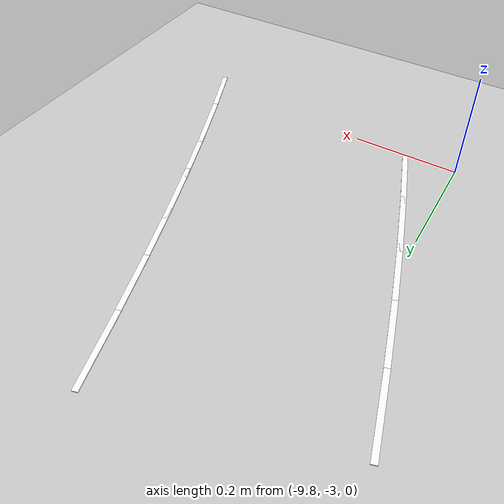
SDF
<sdf version="1.7">
 <world name="default">
  <model name="ground_plane">
   <static>1</static>
   <link name="link">
    <collision name="collision">
     <geometry><plane><normal>0 0 1</normal><size>100 100</size></plane></geometry>
     <surface>
      <contact><collide_bitmask>65535</collide_bitmask></contact>
      <friction><ode><mu>100</mu><mu2>50</mu2></ode></friction>
     </surface>
    </collision>
    <visual name="visual">
     <cast_shadows>0</cast_shadows>
     <geometry><plane><normal>0 0 1</normal><size>100 100</size></plane></geometry>
     <material>
      <script><uri>file://media/materials/scripts/gazebo.material</uri><name>Gazebo/Grey</name></script>
     </material>
    </visual>
   </link>
  </model>
  <model name="lane_line_left_394">
   <static>1</static>
   <link name="link">
    <pose>0 0 -0.004 0 -0 0</pose>
    <visual name="visual">
     <geometry><box><size>0.1344 0.01 0.01</size></box></geometry>
     <material><ambient>1 1 1 1</ambient><diffuse>1 1 1 1</diffuse></material>
    </visual>
    <collision name="collision"><geometry><box><size>0.1344 0.01 0.01</size></box></geometry></collision>
   </link>
   <pose>-9.48436 -2.38498 0 0 0 -1.28946</pose>
  </model>
  <model name="lane_line_right_394">
   <static>1</static>
   <link name="link">
    <pose>0 0 -0.004 0 -0 0</pose>
    <visual name="visual">
     <geometry><box><size>0.1344 0.01 0.01</size></box></geometry>
     <material><ambient>1 1 1 1</ambient><diffuse>1 1 1 1</diffuse></material>
    </visual>
    <collision name="collision"><geometry><box><size>0.1344 0.01 0.01</size></box></geometry></collision>
   </link>
   <pose>-9.86863 -2.49604 0 0 0 -1.28946</pose>
  </model>
  <model name="lane_line_left_395">
   <static>1</static>
   <link name="link">
    <pose>0 0 -0.004 0 -0 0</pose>
    <visual name="visual">
     <geometry><box><size>0.1333 0.01 0.01</size></box></geometry>
     <material><ambient>1 1 1 1</ambient><diffuse>1 1 1 1</diffuse></material>
    </visual>
    <collision name="collision"><geometry><box><size>0.1333 0.01 0.01</size></box></geometry></collision>
   </link>
   <pose>-9.4528 -2.49085 0 0 0 -1.2726</pose>
  </model>
  <model name="lane_line_right_395">
   <static>1</static>
   <link name="link">
    <pose>0 0 -0.004 0 -0 0</pose>
    <visual name="visual">
     <geometry><box><size>0.1333 0.01 0.01</size></box></geometry>
     <material><ambient>1 1 1 1</ambient><diffuse>1 1 1 1</diffuse></material>
    </visual>
    <collision name="collision"><geometry><box><size>0.1333 0.01 0.01</size></box></geometry></collision>
   </link>
   <pose>-9.83514 -2.60837 0 0 0 -1.2726</pose>
  </model>
  <model name="lane_line_left_396">
   <static>1</static>
   <link name="link">
    <pose>0 0 -0.004 0 -0 0</pose>
    <visual name="visual">
     <geometry><box><size>0.1322 0.01 0.01</size></box></geometry>
     <material><ambient>1 1 1 1</ambient><diffuse>1 1 1 1</diffuse></material>
    </visual>
    <collision name="collision"><geometry><box><size>0.1322 0.01 0.01</size></box></geometry></collision>
   </link>
   <pose>-9.41979 -2.59503 0 0 0 -1.25527</pose>
  </model>
  <model name="lane_line_right_396">
   <static>1</static>
   <link name="link">
    <pose>0 0 -0.004 0 -0 0</pose>
    <visual name="visual">
     <geometry><box><size>0.1322 0.01 0.01</size></box></geometry>
     <material><ambient>1 1 1 1</ambient><diffuse>1 1 1 1</diffuse></material>
    </visual>
    <collision name="collision"><geometry><box><size>0.1322 0.01 0.01</size></box></geometry></collision>
   </link>
   <pose>-9.80004 -2.71916 0 0 0 -1.25527</pose>
  </model>
  <model name="lane_line_left_397">
   <static>1</static>
   <link name="link">
    <pose>0 0 -0.004 0 -0 0</pose>
    <visual name="visual">
     <geometry><box><size>0.1311 0.01 0.01</size></box></geometry>
     <material><ambient>1 1 1 1</ambient><diffuse>1 1 1 1</diffuse></material>
    </visual>
    <collision name="collision"><geometry><box><size>0.1311 0.01 0.01</size></box></geometry></collision>
   </link>
   <pose>-9.38535 -2.69745 0 0 0 -1.23745</pose>
  </model>
  <model name="lane_line_right_397">
   <static>1</static>
   <link name="link">
    <pose>0 0 -0.004 0 -0 0</pose>
    <visual name="visual">
     <geometry><box><size>0.1311 0.01 0.01</size></box></geometry>
     <material><ambient>1 1 1 1</ambient><diffuse>1 1 1 1</diffuse></material>
    </visual>
    <collision name="collision"><geometry><box><size>0.1311 0.01 0.01</size></box></geometry></collision>
   </link>
   <pose>-9.76333 -2.82833 0 0 0 -1.23745</pose>
  </model>
  <model name="lane_line_left_398">
   <static>1</static>
   <link name="link">
    <pose>0 0 -0.004 0 -0 0</pose>
    <visual name="visual">
     <geometry><box><size>0.1299 0.01 0.01</size></box></geometry>
     <material><ambient>1 1 1 1</ambient><diffuse>1 1 1 1</diffuse></material>
    </visual>
    <collision name="collision"><geometry><box><size>0.1299 0.01 0.01</size></box></geometry></collision>
   </link>
   <pose>-9.34949 -2.79804 0 0 0 -1.2191</pose>
  </model>
  <model name="lane_line_right_398">
   <static>1</static>
   <link name="link">
    <pose>0 0 -0.004 0 -0 0</pose>
    <visual name="visual">
     <geometry><box><size>0.1299 0.01 0.01</size></box></geometry>
     <material><ambient>1 1 1 1</ambient><diffuse>1 1 1 1</diffuse></material>
    </visual>
    <collision name="collision"><geometry><box><size>0.1299 0.01 0.01</size></box></geometry></collision>
   </link>
   <pose>-9.725 -2.93584 0 0 0 -1.2191</pose>
  </model>
  <model name="lane_line_left_399">
   <static>1</static>
   <link name="link">
    <pose>0 0 -0.004 0 -0 0</pose>
    <visual name="visual">
     <geometry><box><size>0.1287 0.01 0.01</size></box></geometry>
     <material><ambient>1 1 1 1</ambient><diffuse>1 1 1 1</diffuse></material>
    </visual>
    <collision name="collision"><geometry><box><size>0.1287 0.01 0.01</size></box></geometry></collision>
   </link>
   <pose>-9.31221 -2.89673 0 0 0 -1.20019</pose>
  </model>
  <model name="lane_line_left_400">
   <static>1</static>
   <link name="link">
    <pose>0 0 -0.004 0 -0 0</pose>
    <visual name="visual">
     <geometry><box><size>0.1275 0.01 0.01</size></box></geometry>
     <material><ambient>1 1 1 1</ambient><diffuse>1 1 1 1</diffuse></material>
    </visual>
    <collision name="collision"><geometry><box><size>0.1275 0.01 0.01</size></box></geometry></collision>
   </link>
   <pose>-9.27355 -2.99346 0 0 0 -1.1807</pose>
  </model>
 </world>
</sdf>
